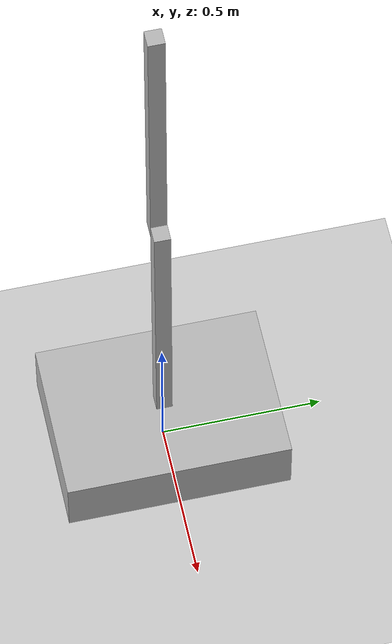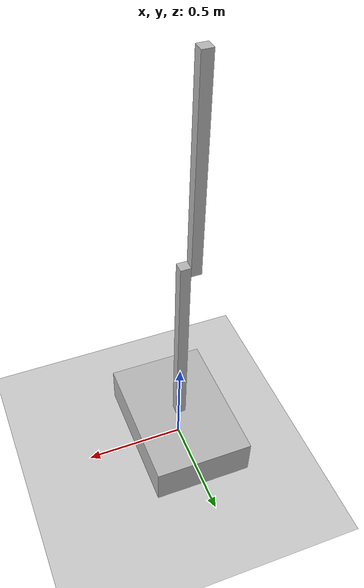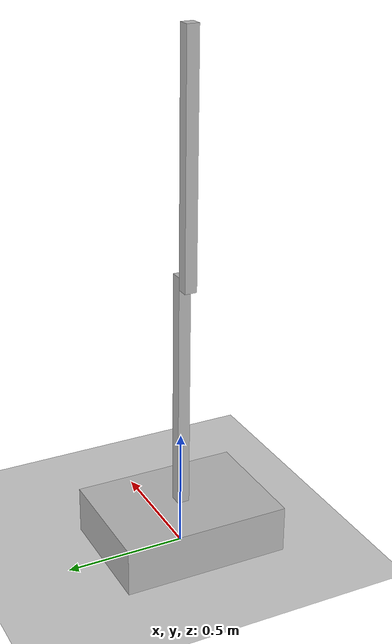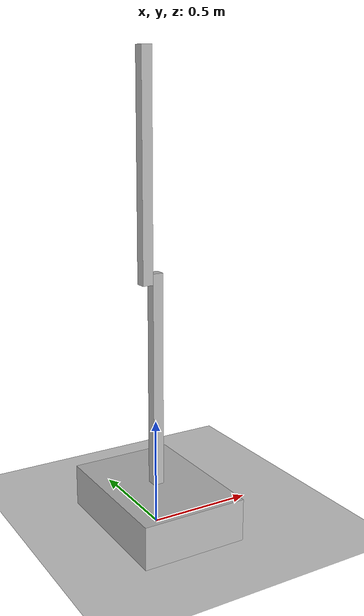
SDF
<sdf version='1.6'>
  <world name='default'>

<include>
<uri>model://sun</uri>
</include>

    <gravity>0 0 -9.8</gravity>
    <magnetic_field>6e-06 2.3e-05 -4.2e-05</magnetic_field>
    <atmosphere type='adiabatic'/>

    <physics name='default_physics' default='0' type='ode'>
      <max_step_size>0.001</max_step_size>
      <real_time_factor>1</real_time_factor>
      <real_time_update_rate>1000</real_time_update_rate>
    </physics>

    <scene>
      <ambient>0.4 0.4 0.4 1</ambient>
      <background>0.7 0.7 0.7 1</background>
      <shadows>1</shadows>
    </scene>

    <audio>
      <device>default</device>
    </audio>

    <spherical_coordinates>
      <surface_model>EARTH_WGS84</surface_model>
      <latitude_deg>0</latitude_deg>
      <longitude_deg>0</longitude_deg>
      <elevation>0</elevation>
      <heading_deg>0</heading_deg>
    </spherical_coordinates>

    <gui fullscreen='0'>
      <camera name='user_camera'>
        <pose frame=''>16.933 -7.39649 7.48163 0 0.371643 2.38418</pose>
        <view_controller>orbit</view_controller>
        <projection_type>perspective</projection_type>
      </camera>
    </gui>

   <model name='ground_plane'>
      <static>1</static>
      <link name='ground_plane::link'>
        <collision name='collision'>
          <geometry>
            <plane>
              <normal>0 0 1</normal>
              <size>100 100</size>
            </plane>
          </geometry>
          <surface>
            <contact>
              <collide_bitmask>65535</collide_bitmask>
              <ode/>
            </contact>
            <friction>
              <ode>
                <mu>100</mu>
                <mu2>50</mu2>
              </ode>
              <torsional>
                <ode/>
              </torsional>
            </friction>
            <bounce/>
          </surface>
          <max_contacts>10</max_contacts>
        </collision>
        <visual name='visual'>
          <cast_shadows>0</cast_shadows>
          <geometry>
            <plane>
              <normal>0 0 1</normal>
              <size>100 100</size>
            </plane>
          </geometry>
          <material>
            <script>
              <uri>file://media/materials/scripts/gazebo.material</uri>
              <name>Gazebo/Grey</name>
            </script>
          </material>
        </visual>
        <self_collide>0</self_collide>
        <enable_wind>0</enable_wind>
        <kinematic>1</kinematic>
      </link>
      <pose frame=''>2.66059 -3.41327 0 0 -0 0</pose>
      <enable_wind>0</enable_wind>
    </model>

<model name="myrobot">
      <pose frame="">0 0 0 0 0 0</pose>
      <self_collide>1</self_collide>

      <link name="base">
        <pose>0 0 0.1 0 0 0</pose>
        <visual name="baseV">
           <pose>0 0 0 0 0 0</pose>
           <geometry>
             <box>
               <size>0.5 0.7 0.2</size>
             </box>
           </geometry>
        </visual>
        <collision name="baseC">
           <pose>0 0 0 0 0 0</pose>
           <geometry>
	     <box>
               <size>0.5 1 0.2</size>
             </box>
           </geometry>
      </collision>
      <surface>
	<contact>
	  <ode>
	    <soft_cfm>0</soft_cfm>
	    <soft_erp>0.2</soft_erp>
	    <kp>1e+13</kp>
	    <kd>1e+11</kd>
	    <max_vel>-1</max_vel>
	    <max_depth>0</max_depth>
	  </ode>
	</contact>
	<friction>
	   <torcional>
	     <ode>
	     </ode>
	   </torcional>
	</friction>
      </surface>
     </link>

     <link name="eslabon1">
        <pose>0 0 0.7 0 0 0</pose>
        <visual name="eslabon1V">
           <pose>0 0 0 0 0 0</pose>
           <geometry>
             <box>
               <size>0.05 0.05 1</size>
             </box>
           </geometry>
        </visual>
        <collision name="eslabon1C">
           <pose>0 0 0 0 0 0</pose>
           <geometry>
	     <box>
               <size>0.05 0.05 1</size>
             </box>
           </geometry>
           <surface>
	     <contact>
	       <ode>
	          <soft_cfm>0</soft_cfm>
	          <soft_erp>0.2</soft_erp>
	          <kp>1e+13</kp>
	          <kd>1e+11</kd>
	          <max_vel>-1</max_vel>
	          <max_depth>0</max_depth>
	        </ode>
	     </contact>
            <friction>
              <torcional>
	        <ode>
	        </ode>
              </torcional>
            </friction>
          </surface>
      </collision>
     </link>

     <link name="eslabon2">
        <pose>-0.05 0 1.65 0 0 0</pose>
        <visual name="eslabon2V">
           <pose>0 0 0 0 0 0</pose>
           <geometry>
             <box>
               <size>0.05 0.05 1</size>
             </box>
           </geometry>
        </visual>
        <collision name="eslabon2C">
           <pose>0 0 0 0 0 0</pose>
           <geometry>
	     <box>
               <size>0.05 0.05 1</size>
             </box>
           </geometry>
           <surface>
	     <contact>
	       <ode>
	          <soft_cfm>0</soft_cfm>
	          <soft_erp>0.2</soft_erp>
	          <kp>1e+13</kp>
	          <kd>1e+11</kd>
	          <max_vel>-1</max_vel>
	          <max_depth>0</max_depth>
	        </ode>
	     </contact>
            <friction>
              <torcional>
	        <ode>
	        </ode>
              </torcional>
            </friction>
          </surface>
      </collision>
     </link>

     <joint name="eslabon1J" type="revolute">
        <pose frame="">0 0 -0.5 0 0 0</pose>
        <parent>base</parent>
        <child>eslabon1</child>
        <axis>
	  <dynamics>
	     <damping>1</damping>
	     <friction>0</friction>
	     <spring_reference>0</spring_reference>>
	     <spring_stiffness>0</spring_stiffness>
	  </dynamics>
	  <limit>
	    <lower>-3.14</lower>
	    <upper>3.14</upper>
	<effort>0</effort>
	    <velocity>0</velocity>
	  </limit>
	  <xyz>0 0 1</xyz>
	  <use_parent_model_frame>1</use_parent_model_frame>
	</axis>
     </joint>

     <joint name="eslabon2J" type="revolute">
        <pose frame="">0 0 -0.475 0 0 0</pose>
        <parent>eslabon1</parent>
        <child>eslabon2</child>
        <axis>
	  <dynamics>
	     <damping>1</damping>
	     <friction>0</friction>
	     <spring_reference>0</spring_reference>>
	     <spring_stiffness>0</spring_stiffness>
	  </dynamics>
	  <limit>
	    <lower>0</lower>
	    <upper>3.14</upper>
	  </limit>
	  <xyz>1 0 0</xyz>
	  <use_parent_model_frame>1</use_parent_model_frame>
	</axis>
     </joint>

  </model>
 </world>
</sdf>
